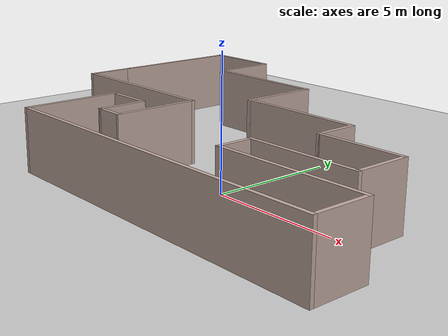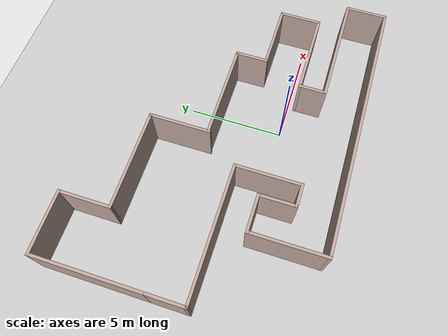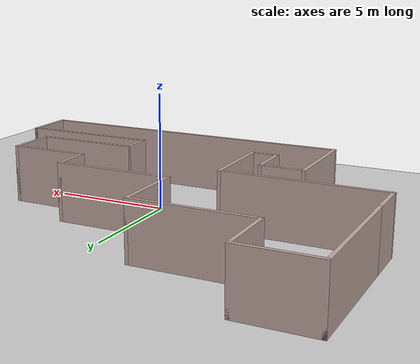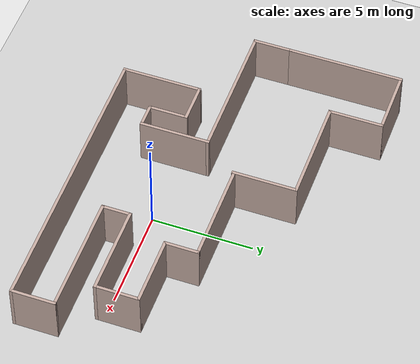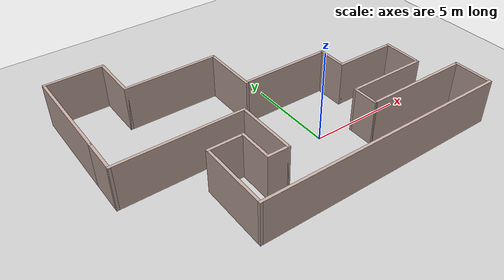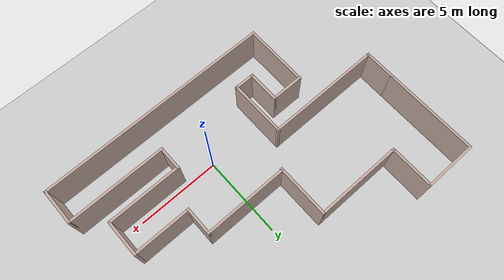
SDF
<sdf version="1.7">
 <world name="default">
  <light name="sun" type="directional">
   <pose>0 0 10 0 -0 0</pose>
   <diffuse>0.8 0.8 0.8 1</diffuse>
   <specular>0.2 0.2 0.2 1</specular>
   <attenuation>
    <range>1000</range>
    <constant>0.9</constant>
    <linear>0.01</linear>
    <quadratic>0.001</quadratic>
   </attenuation>
   <direction>-0.5 0.1 -0.9</direction>
   <spot><inner_angle>0</inner_angle><outer_angle>0</outer_angle><falloff>0</falloff></spot>
  </light>
  <model name="ground_plane">
   <static>1</static>
   <link name="link">
    <collision name="collision">
     <geometry><plane><normal>0 0 1</normal><size>100 100</size></plane></geometry>
     <surface>
      <contact><collide_bitmask>65535</collide_bitmask></contact>
      <friction><ode><mu>100</mu><mu2>50</mu2></ode></friction>
     </surface>
    </collision>
    <visual name="visual">
     <cast_shadows>0</cast_shadows>
     <geometry><plane><normal>0 0 1</normal><size>100 100</size></plane></geometry>
     <material>
      <script><uri>file://media/materials/scripts/gazebo.material</uri><name>Gazebo/Grey</name></script>
     </material>
    </visual>
   </link>
  </model>
  <gravity>0 0 -9.8</gravity>
  <magnetic_field>6e-06 2.3e-05 -4.2e-05</magnetic_field>
  <atmosphere type="adiabatic"/>
  <physics type="ode">
   <max_step_size>0.001</max_step_size>
   <real_time_factor>1</real_time_factor>
   <real_time_update_rate>1000</real_time_update_rate>
  </physics>
  <scene><ambient>0.4 0.4 0.4 1</ambient><background>0.7 0.7 0.7 1</background><shadows>1</shadows></scene>
  <spherical_coordinates>
   <surface_model>EARTH_WGS84</surface_model>
   <latitude_deg>0</latitude_deg>
   <longitude_deg>0</longitude_deg>
   <elevation>0</elevation>
   <heading_deg>0</heading_deg>
  </spherical_coordinates>
  <model name="myworld">
   <pose>-1.32244 2.58291 0 0 -0 0</pose>
   <link name="Wall_10">
    <collision name="Wall_10_Collision">
     <geometry><box><size>2.25 0.15 2.5</size></box></geometry>
     <pose>0 0 1.25 0 -0 0</pose>
    </collision>
    <visual name="Wall_10_Visual">
     <pose>0 0 1.25 0 -0 0</pose>
     <geometry><box><size>2.25 0.15 2.5</size></box></geometry>
     <material>
      <script><uri>file://media/materials/scripts/gazebo.material</uri><name>Gazebo/Grey</name></script>
      <ambient>0.760784 0.662745 0.627451 1</ambient>
     </material>
     <meta><layer>0</layer></meta>
    </visual>
    <pose>7.5 -1.9 0 0 -0 -1.5708</pose>
   </link>
   <link name="Wall_11">
    <collision name="Wall_11_Collision">
     <geometry><box><size>4.5 0.15 2.5</size></box></geometry>
     <pose>0 0 1.25 0 -0 0</pose>
    </collision>
    <visual name="Wall_11_Visual">
     <pose>0 0 1.25 0 -0 0</pose>
     <geometry><box><size>4.5 0.15 2.5</size></box></geometry>
     <material>
      <script><uri>file://media/materials/scripts/gazebo.material</uri><name>Gazebo/Grey</name></script>
      <ambient>0.760784 0.662745 0.627451 1</ambient>
     </material>
     <meta><layer>0</layer></meta>
    </visual>
    <pose>5.325 -2.95 0 0 -0 3.14159</pose>
   </link>
   <link name="Wall_12">
    <collision name="Wall_12_Collision">
     <geometry><box><size>1.5 0.15 2.5</size></box></geometry>
     <pose>0 0 1.25 0 -0 0</pose>
    </collision>
    <visual name="Wall_12_Visual">
     <pose>0 0 1.25 0 -0 0</pose>
     <geometry><box><size>1.5 0.15 2.5</size></box></geometry>
     <material>
      <script><uri>file://media/materials/scripts/gazebo.material</uri><name>Gazebo/Grey</name></script>
      <ambient>0.760784 0.662745 0.627451 1</ambient>
     </material>
     <meta><layer>0</layer></meta>
    </visual>
    <pose>3.15 -3.625 0 0 -0 -1.5708</pose>
   </link>
   <link name="Wall_13">
    <collision name="Wall_13_Collision">
     <geometry><box><size>6 0.15 2.5</size></box></geometry>
     <pose>0 0 1.25 0 -0 0</pose>
    </collision>
    <visual name="Wall_13_Visual">
     <pose>0 0 1.25 0 -0 0</pose>
     <geometry><box><size>6 0.15 2.5</size></box></geometry>
     <material>
      <script><uri>file://media/materials/scripts/gazebo.material</uri><name>Gazebo/Grey</name></script>
      <ambient>0.760784 0.662745 0.627451 1</ambient>
     </material>
     <meta><layer>0</layer></meta>
    </visual>
    <pose>6.075 -4.3 0 0 -0 0</pose>
   </link>
   <link name="Wall_14">
    <collision name="Wall_14_Collision">
     <geometry><box><size>2.25 0.15 2.5</size></box></geometry>
     <pose>0 0 1.25 0 -0 0</pose>
    </collision>
    <visual name="Wall_14_Visual">
     <pose>0 0 1.25 0 -0 0</pose>
     <geometry><box><size>2.25 0.15 2.5</size></box></geometry>
     <material>
      <script><uri>file://media/materials/scripts/gazebo.material</uri><name>Gazebo/Grey</name></script>
      <ambient>0.760784 0.662745 0.627451 1</ambient>
     </material>
     <meta><layer>0</layer></meta>
    </visual>
    <pose>9 -5.35 0 0 -0 -1.5708</pose>
   </link>
   <link name="Wall_15">
    <collision name="Wall_15_Collision">
     <geometry><box><size>14.25 0.15 2.5</size></box></geometry>
     <pose>0 0 1.25 0 -0 0</pose>
    </collision>
    <visual name="Wall_15_Visual">
     <pose>0 0 1.25 0 -0 0</pose>
     <geometry><box><size>14.25 0.15 2.5</size></box></geometry>
     <material>
      <script><uri>file://media/materials/scripts/gazebo.material</uri><name>Gazebo/Grey</name></script>
      <ambient>0.760784 0.662745 0.627451 1</ambient>
     </material>
     <meta><layer>0</layer></meta>
    </visual>
    <pose>1.95 -6.4 0 0 -0 3.14159</pose>
   </link>
   <link name="Wall_16">
    <collision name="Wall_16_Collision">
     <geometry><box><size>4 0.15 2.5</size></box></geometry>
     <pose>0 0 1.25 0 -0 0</pose>
    </collision>
    <visual name="Wall_16_Visual">
     <pose>0 0 1.25 0 -0 0</pose>
     <geometry><box><size>4 0.15 2.5</size></box></geometry>
     <material>
      <script><uri>file://media/materials/scripts/gazebo.material</uri><name>Gazebo/Grey</name></script>
      <ambient>0.760784 0.662745 0.627451 1</ambient>
     </material>
     <meta><layer>0</layer></meta>
    </visual>
    <pose>-5.1 -4.475 0 0 -0 1.5708</pose>
   </link>
   <link name="Wall_17">
    <collision name="Wall_17_Collision">
     <geometry><box><size>2 0.15 2.5</size></box></geometry>
     <pose>0 0 1.25 0 -0 0</pose>
    </collision>
    <visual name="Wall_17_Visual">
     <pose>0 0 1.25 0 -0 0</pose>
     <geometry><box><size>2 0.15 2.5</size></box></geometry>
     <material>
      <script><uri>file://media/materials/scripts/gazebo.material</uri><name>Gazebo/Grey</name></script>
      <ambient>0.760784 0.662745 0.627451 1</ambient>
     </material>
     <meta><layer>0</layer></meta>
    </visual>
    <pose>-4.175 -2.55 0 0 -0 0</pose>
   </link>
   <link name="Wall_18">
    <collision name="Wall_18_Collision">
     <geometry><box><size>2 0.15 2.5</size></box></geometry>
     <pose>0 0 1.25 0 -0 0</pose>
    </collision>
    <visual name="Wall_18_Visual">
     <pose>0 0 1.25 0 -0 0</pose>
     <geometry><box><size>2 0.15 2.5</size></box></geometry>
     <material>
      <script><uri>file://media/materials/scripts/gazebo.material</uri><name>Gazebo/Grey</name></script>
      <ambient>0.760784 0.662745 0.627451 1</ambient>
     </material>
     <meta><layer>0</layer></meta>
    </visual>
    <pose>-3.25 -3.475 0 0 -0 -1.5708</pose>
   </link>
   <link name="Wall_19">
    <collision name="Wall_19_Collision">
     <geometry><box><size>1.25 0.15 2.5</size></box></geometry>
     <pose>0 0 1.25 0 -0 0</pose>
    </collision>
    <visual name="Wall_19_Visual">
     <pose>0 0 1.25 0 -0 0</pose>
     <geometry><box><size>1.25 0.15 2.5</size></box></geometry>
     <material>
      <script><uri>file://media/materials/scripts/gazebo.material</uri><name>Gazebo/Grey</name></script>
      <ambient>0.760784 0.662745 0.627451 1</ambient>
     </material>
     <meta><layer>0</layer></meta>
    </visual>
    <pose>-2.7 -4.4 0 0 -0 0</pose>
   </link>
   <link name="Wall_20">
    <collision name="Wall_20_Collision">
     <geometry><box><size>3.5 0.15 2.5</size></box></geometry>
     <pose>0 0 1.25 0 -0 0</pose>
    </collision>
    <visual name="Wall_20_Visual">
     <pose>0 0 1.25 0 -0 0</pose>
     <geometry><box><size>3.5 0.15 2.5</size></box></geometry>
     <material>
      <script><uri>file://media/materials/scripts/gazebo.material</uri><name>Gazebo/Grey</name></script>
      <ambient>0.760784 0.662745 0.627451 1</ambient>
     </material>
     <meta><layer>0</layer></meta>
    </visual>
    <pose>-2.15 -2.725 0 0 -0 1.5708</pose>
   </link>
   <link name="Wall_21">
    <collision name="Wall_21_Collision">
     <geometry><box><size>7 0.15 2.5</size></box></geometry>
     <pose>0 0 1.25 0 -0 0</pose>
    </collision>
    <visual name="Wall_21_Visual">
     <pose>0 0 1.25 0 -0 0</pose>
     <geometry><box><size>7 0.15 2.5</size></box></geometry>
     <material>
      <script><uri>file://media/materials/scripts/gazebo.material</uri><name>Gazebo/Grey</name></script>
      <ambient>0.760784 0.662745 0.627451 1</ambient>
     </material>
     <meta><layer>0</layer></meta>
    </visual>
    <pose>-5.575 -1.05 0 0 -0 3.14159</pose>
   </link>
   <link name="Wall_22">
    <collision name="Wall_22_Collision">
     <geometry><box><size>2 0.15 2.5</size></box></geometry>
     <pose>0 0 1.25 0 -0 0</pose>
    </collision>
    <visual name="Wall_22_Visual">
     <pose>0 0 1.25 0 -0 0</pose>
     <geometry><box><size>2 0.15 2.5</size></box></geometry>
     <material>
      <script><uri>file://media/materials/scripts/gazebo.material</uri><name>Gazebo/Grey</name></script>
      <ambient>0.760784 0.662745 0.627451 1</ambient>
     </material>
     <meta><layer>0</layer></meta>
    </visual>
    <pose>-9 -0.125 0 0 -0 1.5708</pose>
   </link>
   <link name="Wall_23">
    <collision name="Wall_23_Collision">
     <geometry><box><size>5.75 0.15 2.5</size></box></geometry>
     <pose>0 0 1.25 0 -0 0</pose>
    </collision>
    <visual name="Wall_23_Visual">
     <pose>0 0 1.25 0 -0 0</pose>
     <geometry><box><size>5.75 0.15 2.5</size></box></geometry>
     <material>
      <script><uri>file://media/materials/scripts/gazebo.material</uri><name>Gazebo/Grey</name></script>
      <ambient>0.760784 0.662745 0.627451 1</ambient>
     </material>
     <meta><layer>0</layer></meta>
    </visual>
    <pose>-9 3.6 0 0 -0 1.5708</pose>
   </link>
   <link name="Wall_24">
    <collision name="Wall_24_Collision">
     <geometry><box><size>3.25 0.15 2.5</size></box></geometry>
     <pose>0 0 1.25 0 -0 0</pose>
    </collision>
    <visual name="Wall_24_Visual">
     <pose>0 0 1.25 0 -0 0</pose>
     <geometry><box><size>3.25 0.15 2.5</size></box></geometry>
     <material>
      <script><uri>file://media/materials/scripts/gazebo.material</uri><name>Gazebo/Grey</name></script>
      <ambient>0.760784 0.662745 0.627451 1</ambient>
     </material>
     <meta><layer>0</layer></meta>
    </visual>
    <pose>-7.45 6.4 0 0 -0 0</pose>
   </link>
   <link name="Wall_25">
    <collision name="Wall_25_Collision">
     <geometry><box><size>2.75 0.15 2.5</size></box></geometry>
     <pose>0 0 1.25 0 -0 0</pose>
    </collision>
    <visual name="Wall_25_Visual">
     <pose>0 0 1.25 0 -0 0</pose>
     <geometry><box><size>2.75 0.15 2.5</size></box></geometry>
     <material>
      <script><uri>file://media/materials/scripts/gazebo.material</uri><name>Gazebo/Grey</name></script>
      <ambient>0.760784 0.662745 0.627451 1</ambient>
     </material>
     <meta><layer>0</layer></meta>
    </visual>
    <pose>-5.9 5.1 0 0 -0 -1.5708</pose>
   </link>
   <link name="Wall_26">
    <collision name="Wall_26_Collision">
     <geometry><box><size>5.25 0.15 2.5</size></box></geometry>
     <pose>0 0 1.25 0 -0 0</pose>
    </collision>
    <visual name="Wall_26_Visual">
     <pose>0 0 1.25 0 -0 0</pose>
     <geometry><box><size>5.25 0.15 2.5</size></box></geometry>
     <material>
      <script><uri>file://media/materials/scripts/gazebo.material</uri><name>Gazebo/Grey</name></script>
      <ambient>0.760784 0.662745 0.627451 1</ambient>
     </material>
     <meta><layer>0</layer></meta>
    </visual>
    <pose>-3.35 3.8 0 0 -0 0</pose>
   </link>
   <link name="Wall_27">
    <collision name="Wall_27_Collision">
     <geometry><box><size>3.25 0.15 2.5</size></box></geometry>
     <pose>0 0 1.25 0 -0 0</pose>
    </collision>
    <visual name="Wall_27_Visual">
     <pose>0 0 1.25 0 -0 0</pose>
     <geometry><box><size>3.25 0.15 2.5</size></box></geometry>
     <material>
      <script><uri>file://media/materials/scripts/gazebo.material</uri><name>Gazebo/Grey</name></script>
      <ambient>0.760784 0.662745 0.627451 1</ambient>
     </material>
     <meta><layer>0</layer></meta>
    </visual>
    <pose>-0.8 2.25 0 0 -0 -1.5708</pose>
   </link>
   <link name="Wall_7">
    <collision name="Wall_7_Collision">
     <geometry><box><size>5 0.15 2.5</size></box></geometry>
     <pose>0 0 1.25 0 -0 0</pose>
    </collision>
    <visual name="Wall_7_Visual">
     <pose>0 0 1.25 0 -0 0</pose>
     <geometry><box><size>5 0.15 2.5</size></box></geometry>
     <material>
      <script><uri>file://media/materials/scripts/gazebo.material</uri><name>Gazebo/Grey</name></script>
      <ambient>0.760784 0.662745 0.627451 1</ambient>
     </material>
     <meta><layer>0</layer></meta>
    </visual>
    <pose>1.725 0.75 0 0 -0 0</pose>
   </link>
   <link name="Wall_8">
    <collision name="Wall_8_Collision">
     <geometry><box><size>1.75 0.15 2.5</size></box></geometry>
     <pose>0 0 1.25 0 -0 0</pose>
    </collision>
    <visual name="Wall_8_Visual">
     <pose>0 0 1.25 0 -0 0</pose>
     <geometry><box><size>1.75 0.15 2.5</size></box></geometry>
     <material>
      <script><uri>file://media/materials/scripts/gazebo.material</uri><name>Gazebo/Grey</name></script>
      <ambient>0.760784 0.662745 0.627451 1</ambient>
     </material>
     <meta><layer>0</layer></meta>
    </visual>
    <pose>4.15 -0.05 0 0 -0 -1.5708</pose>
   </link>
   <link name="Wall_9">
    <collision name="Wall_9_Collision">
     <geometry><box><size>3.5 0.15 2.5</size></box></geometry>
     <pose>0 0 1.25 0 -0 0</pose>
    </collision>
    <visual name="Wall_9_Visual">
     <pose>0 0 1.25 0 -0 0</pose>
     <geometry><box><size>3.5 0.15 2.5</size></box></geometry>
     <material>
      <script><uri>file://media/materials/scripts/gazebo.material</uri><name>Gazebo/Grey</name></script>
      <ambient>0.760784 0.662745 0.627451 1</ambient>
     </material>
     <meta><layer>0</layer></meta>
    </visual>
    <pose>5.825 -0.85 0 0 -0 0</pose>
   </link>
   <static>1</static>
  </model>
 </world>
</sdf>
